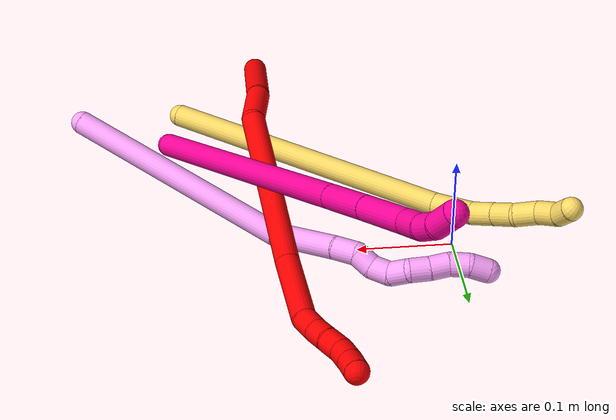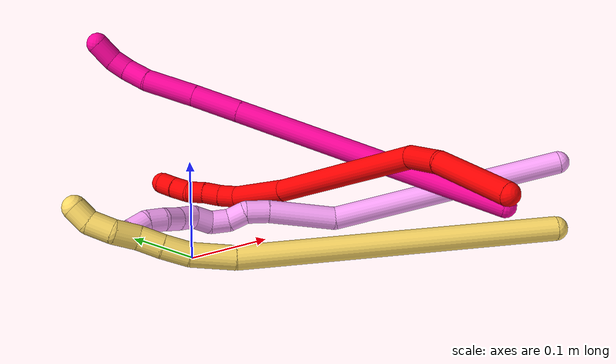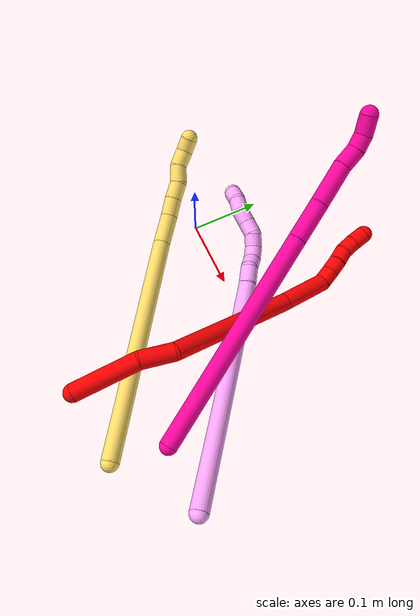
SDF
<sdf version="1.7">
 <world name="default">
  <model name="2">
   <static>0</static>
   <link name="2">
    <collision name="collision-cylinder-e_1_1_4">
     <pose>-0.004747 0.020313 -0.040989 -2.6815 -0.103409 0.434957</pose>
     <geometry><cylinder><radius>0.0125</radius><length>0.091983</length></cylinder></geometry>
     <surface>
      <friction><ode><mu>1.16</mu><mu2>1.16</mu2><slip1>0</slip1><slip2>0</slip2></ode></friction>
      <contact><ode><kp>1e+06</kp><kd>1</kd><max_vel>0</max_vel><min_depth>0.001</min_depth></ode></contact>
     </surface>
    </collision>
    <visual name="visual-cylinder-e_1_1_4">
     <pose>-0.004747 0.020313 -0.040989 -2.6815 -0.103409 0.434957</pose>
     <geometry><cylinder><radius>0.0125</radius><length>0.091983</length></cylinder></geometry>
     <material><ambient>1 0 0 1</ambient></material>
    </visual>
    <collision name="collision-cylinder-e_2_4_5">
     <pose>-0.007983 0.045869 -0.104535 -2.9132 0.065198 -0.554019</pose>
     <geometry><cylinder><radius>0.0125</radius><length>0.046417</length></cylinder></geometry>
     <surface>
      <friction><ode><mu>1.16</mu><mu2>1.16</mu2><slip1>0</slip1><slip2>0</slip2></ode></friction>
      <contact><ode><kp>1e+06</kp><kd>1</kd><max_vel>0</max_vel><min_depth>0.001</min_depth></ode></contact>
     </surface>
    </collision>
    <visual name="visual-cylinder-e_2_4_5">
     <pose>-0.007983 0.045869 -0.104535 -2.9132 0.065198 -0.554019</pose>
     <geometry><cylinder><radius>0.0125</radius><length>0.046417</length></cylinder></geometry>
     <material><ambient>1 0 0 1</ambient></material>
    </visual>
    <collision name="collision-cylinder-e_3_5_6">
     <pose>-0.024752 0.043484 -0.21868 3.0585 -0.196348 -2.34277</pose>
     <geometry><cylinder><radius>0.0125</radius><length>0.18741</length></cylinder></geometry>
     <surface>
      <friction><ode><mu>1.16</mu><mu2>1.16</mu2><slip1>0</slip1><slip2>0</slip2></ode></friction>
      <contact><ode><kp>1e+06</kp><kd>1</kd><max_vel>0</max_vel><min_depth>0.001</min_depth></ode></contact>
     </surface>
    </collision>
    <visual name="visual-cylinder-e_3_5_6">
     <pose>-0.024752 0.043484 -0.21868 3.0585 -0.196348 -2.34277</pose>
     <geometry><cylinder><radius>0.0125</radius><length>0.18741</length></cylinder></geometry>
     <material><ambient>1 0 0 1</ambient></material>
    </visual>
    <collision name="collision-cylinder-e_4_6_7">
     <pose>-0.051325 0.035927 -0.345409 -3.13957 -0.231741 3.12424</pose>
     <geometry><cylinder><radius>0.0125</radius><length>0.072213</length></cylinder></geometry>
     <surface>
      <friction><ode><mu>1.16</mu><mu2>1.16</mu2><slip1>0</slip1><slip2>0</slip2></ode></friction>
      <contact><ode><kp>1e+06</kp><kd>1</kd><max_vel>0</max_vel><min_depth>0.001</min_depth></ode></contact>
     </surface>
    </collision>
    <visual name="visual-cylinder-e_4_6_7">
     <pose>-0.051325 0.035927 -0.345409 -3.13957 -0.231741 3.12424</pose>
     <geometry><cylinder><radius>0.0125</radius><length>0.072213</length></cylinder></geometry>
     <material><ambient>1 0 0 1</ambient></material>
    </visual>
    <collision name="collision-cylinder-e_5_7_8">
     <pose>-0.065531 0.037891 -0.389327 -2.9292 -0.582414 2.45819</pose>
     <geometry><cylinder><radius>0.0125</radius><length>0.021502</length></cylinder></geometry>
     <surface>
      <friction><ode><mu>1.16</mu><mu2>1.16</mu2><slip1>0</slip1><slip2>0</slip2></ode></friction>
      <contact><ode><kp>1e+06</kp><kd>1</kd><max_vel>0</max_vel><min_depth>0.001</min_depth></ode></contact>
     </surface>
    </collision>
    <visual name="visual-cylinder-e_5_7_8">
     <pose>-0.065531 0.037891 -0.389327 -2.9292 -0.582414 2.45819</pose>
     <geometry><cylinder><radius>0.0125</radius><length>0.021502</length></cylinder></geometry>
     <material><ambient>1 0 0 1</ambient></material>
    </visual>
    <collision name="collision-cylinder-e_6_8_9">
     <pose>-0.077221 0.042709 -0.405873 -2.78141 -0.607935 2.08984</pose>
     <geometry><cylinder><radius>0.0125</radius><length>0.020226</length></cylinder></geometry>
     <surface>
      <friction><ode><mu>1.16</mu><mu2>1.16</mu2><slip1>0</slip1><slip2>0</slip2></ode></friction>
      <contact><ode><kp>1e+06</kp><kd>1</kd><max_vel>0</max_vel><min_depth>0.001</min_depth></ode></contact>
     </surface>
    </collision>
    <visual name="visual-cylinder-e_6_8_9">
     <pose>-0.077221 0.042709 -0.405873 -2.78141 -0.607935 2.08984</pose>
     <geometry><cylinder><radius>0.0125</radius><length>0.020226</length></cylinder></geometry>
     <material><ambient>1 0 0 1</ambient></material>
    </visual>
    <collision name="collision-cylinder-e_7_9_10">
     <pose>-0.089433 0.047287 -0.421233 -2.92724 -0.691819 2.56139</pose>
     <geometry><cylinder><radius>0.0125</radius><length>0.020178</length></cylinder></geometry>
     <surface>
      <friction><ode><mu>1.16</mu><mu2>1.16</mu2><slip1>0</slip1><slip2>0</slip2></ode></friction>
      <contact><ode><kp>1e+06</kp><kd>1</kd><max_vel>0</max_vel><min_depth>0.001</min_depth></ode></contact>
     </surface>
    </collision>
    <visual name="visual-cylinder-e_7_9_10">
     <pose>-0.089433 0.047287 -0.421233 -2.92724 -0.691819 2.56139</pose>
     <geometry><cylinder><radius>0.0125</radius><length>0.020178</length></cylinder></geometry>
     <material><ambient>1 0 0 1</ambient></material>
    </visual>
    <collision name="collision-cylinder-e_8_10_11">
     <pose>-0.09983 0.052538 -0.43728 -2.73927 -0.406908 1.58244</pose>
     <geometry><cylinder><radius>0.0125</radius><length>0.020014</length></cylinder></geometry>
     <surface>
      <friction><ode><mu>1.16</mu><mu2>1.16</mu2><slip1>0</slip1><slip2>0</slip2></ode></friction>
      <contact><ode><kp>1e+06</kp><kd>1</kd><max_vel>0</max_vel><min_depth>0.001</min_depth></ode></contact>
     </surface>
    </collision>
    <visual name="visual-cylinder-e_8_10_11">
     <pose>-0.09983 0.052538 -0.43728 -2.73927 -0.406908 1.58244</pose>
     <geometry><cylinder><radius>0.0125</radius><length>0.020014</length></cylinder></geometry>
     <material><ambient>1 0 0 1</ambient></material>
    </visual>
    <collision name="collision-cylinder-e_9_11_2">
     <pose>-0.106998 0.060011 -0.454412 -2.72162 -0.325531 1.31301</pose>
     <geometry><cylinder><radius>0.0125</radius><length>0.020057</length></cylinder></geometry>
     <surface>
      <friction><ode><mu>1.16</mu><mu2>1.16</mu2><slip1>0</slip1><slip2>0</slip2></ode></friction>
      <contact><ode><kp>1e+06</kp><kd>1</kd><max_vel>0</max_vel><min_depth>0.001</min_depth></ode></contact>
     </surface>
    </collision>
    <visual name="visual-cylinder-e_9_11_2">
     <pose>-0.106998 0.060011 -0.454412 -2.72162 -0.325531 1.31301</pose>
     <geometry><cylinder><radius>0.0125</radius><length>0.020057</length></cylinder></geometry>
     <material><ambient>1 0 0 1</ambient></material>
    </visual>
    <collision name="collision-sphere-2">
     <pose>-0.110205 0.063885 -0.463088 0 -0 0</pose>
     <geometry><sphere><radius>0.0125</radius></sphere></geometry>
     <surface>
      <friction><ode><mu>1.16</mu><mu2>1.16</mu2><slip1>0</slip1><slip2>0</slip2></ode></friction>
      <contact><ode><kp>1e+06</kp><kd>1</kd><max_vel>0</max_vel><min_depth>0.001</min_depth></ode></contact>
     </surface>
    </collision>
    <visual name="visual-sphere-2">
     <pose>-0.110205 0.063885 -0.463088 0 -0 0</pose>
     <geometry><sphere><radius>0.0125</radius></sphere></geometry>
     <material><ambient>1 0 0 1</ambient></material>
    </visual>
    <collision name="collision-sphere-11">
     <pose>-0.10379 0.056137 -0.445736 0 -0 0</pose>
     <geometry><sphere><radius>0.0125</radius></sphere></geometry>
     <surface>
      <friction><ode><mu>1.16</mu><mu2>1.16</mu2><slip1>0</slip1><slip2>0</slip2></ode></friction>
      <contact><ode><kp>1e+06</kp><kd>1</kd><max_vel>0</max_vel><min_depth>0.001</min_depth></ode></contact>
     </surface>
    </collision>
    <visual name="visual-sphere-11">
     <pose>-0.10379 0.056137 -0.445736 0 -0 0</pose>
     <geometry><sphere><radius>0.0125</radius></sphere></geometry>
     <material><ambient>1 0 0 1</ambient></material>
    </visual>
    <collision name="collision-sphere-10">
     <pose>-0.09587 0.04894 -0.428824 0 -0 0</pose>
     <geometry><sphere><radius>0.0125</radius></sphere></geometry>
     <surface>
      <friction><ode><mu>1.16</mu><mu2>1.16</mu2><slip1>0</slip1><slip2>0</slip2></ode></friction>
      <contact><ode><kp>1e+06</kp><kd>1</kd><max_vel>0</max_vel><min_depth>0.001</min_depth></ode></contact>
     </surface>
    </collision>
    <visual name="visual-sphere-10">
     <pose>-0.09587 0.04894 -0.428824 0 -0 0</pose>
     <geometry><sphere><radius>0.0125</radius></sphere></geometry>
     <material><ambient>1 0 0 1</ambient></material>
    </visual>
    <collision name="collision-sphere-9">
     <pose>-0.082997 0.045635 -0.413641 0 -0 0</pose>
     <geometry><sphere><radius>0.0125</radius></sphere></geometry>
     <surface>
      <friction><ode><mu>1.16</mu><mu2>1.16</mu2><slip1>0</slip1><slip2>0</slip2></ode></friction>
      <contact><ode><kp>1e+06</kp><kd>1</kd><max_vel>0</max_vel><min_depth>0.001</min_depth></ode></contact>
     </surface>
    </collision>
    <visual name="visual-sphere-9">
     <pose>-0.082997 0.045635 -0.413641 0 -0 0</pose>
     <geometry><sphere><radius>0.0125</radius></sphere></geometry>
     <material><ambient>1 0 0 1</ambient></material>
    </visual>
    <collision name="collision-sphere-4">
     <pose>-0.009495 0.040625 -0.081977 0 -0 0</pose>
     <geometry><sphere><radius>0.0125</radius></sphere></geometry>
     <surface>
      <friction><ode><mu>1.16</mu><mu2>1.16</mu2><slip1>0</slip1><slip2>0</slip2></ode></friction>
      <contact><ode><kp>1e+06</kp><kd>1</kd><max_vel>0</max_vel><min_depth>0.001</min_depth></ode></contact>
     </surface>
    </collision>
    <visual name="visual-sphere-4">
     <pose>-0.009495 0.040625 -0.081977 0 -0 0</pose>
     <geometry><sphere><radius>0.0125</radius></sphere></geometry>
     <material><ambient>1 0 0 1</ambient></material>
    </visual>
    <collision name="collision-sphere-1">
     <geometry><sphere><radius>0.0125</radius></sphere></geometry>
     <surface>
      <friction><ode><mu>1.16</mu><mu2>1.16</mu2><slip1>0</slip1><slip2>0</slip2></ode></friction>
      <contact><ode><kp>1e+06</kp><kd>1</kd><max_vel>0</max_vel><min_depth>0.001</min_depth></ode></contact>
     </surface>
    </collision>
    <visual name="visual-sphere-1">
     <geometry><sphere><radius>0.0125</radius></sphere></geometry>
     <material><ambient>1 0 0 1</ambient></material>
    </visual>
    <collision name="collision-sphere-8">
     <pose>-0.071445 0.039783 -0.398104 0 -0 0</pose>
     <geometry><sphere><radius>0.0125</radius></sphere></geometry>
     <surface>
      <friction><ode><mu>1.16</mu><mu2>1.16</mu2><slip1>0</slip1><slip2>0</slip2></ode></friction>
      <contact><ode><kp>1e+06</kp><kd>1</kd><max_vel>0</max_vel><min_depth>0.001</min_depth></ode></contact>
     </surface>
    </collision>
    <visual name="visual-sphere-8">
     <pose>-0.071445 0.039783 -0.398104 0 -0 0</pose>
     <geometry><sphere><radius>0.0125</radius></sphere></geometry>
     <material><ambient>1 0 0 1</ambient></material>
    </visual>
    <collision name="collision-sphere-5">
     <pose>-0.006471 0.051112 -0.127093 0 -0 0</pose>
     <geometry><sphere><radius>0.0125</radius></sphere></geometry>
     <surface>
      <friction><ode><mu>1.16</mu><mu2>1.16</mu2><slip1>0</slip1><slip2>0</slip2></ode></friction>
      <contact><ode><kp>1e+06</kp><kd>1</kd><max_vel>0</max_vel><min_depth>0.001</min_depth></ode></contact>
     </surface>
    </collision>
    <visual name="visual-sphere-5">
     <pose>-0.006471 0.051112 -0.127093 0 -0 0</pose>
     <geometry><sphere><radius>0.0125</radius></sphere></geometry>
     <material><ambient>1 0 0 1</ambient></material>
    </visual>
    <collision name="collision-sphere-6">
     <pose>-0.043032 0.035856 -0.310268 0 -0 0</pose>
     <geometry><sphere><radius>0.0125</radius></sphere></geometry>
     <surface>
      <friction><ode><mu>1.16</mu><mu2>1.16</mu2><slip1>0</slip1><slip2>0</slip2></ode></friction>
      <contact><ode><kp>1e+06</kp><kd>1</kd><max_vel>0</max_vel><min_depth>0.001</min_depth></ode></contact>
     </surface>
    </collision>
    <visual name="visual-sphere-6">
     <pose>-0.043032 0.035856 -0.310268 0 -0 0</pose>
     <geometry><sphere><radius>0.0125</radius></sphere></geometry>
     <material><ambient>1 0 0 1</ambient></material>
    </visual>
    <collision name="collision-sphere-7">
     <pose>-0.059618 0.035998 -0.380551 0 -0 0</pose>
     <geometry><sphere><radius>0.0125</radius></sphere></geometry>
     <surface>
      <friction><ode><mu>1.16</mu><mu2>1.16</mu2><slip1>0</slip1><slip2>0</slip2></ode></friction>
      <contact><ode><kp>1e+06</kp><kd>1</kd><max_vel>0</max_vel><min_depth>0.001</min_depth></ode></contact>
     </surface>
    </collision>
    <visual name="visual-sphere-7">
     <pose>-0.059618 0.035998 -0.380551 0 -0 0</pose>
     <geometry><sphere><radius>0.0125</radius></sphere></geometry>
     <material><ambient>1 0 0 1</ambient></material>
    </visual>
    <inertial>
     <pose>-0.036144 0.039258 -0.234989 0 -0 0</pose>
     <mass>0.5</mass>
     <inertia>
      <ixx>-0.000716</ixx>
      <ixy>0</ixy>
      <ixz>0</ixz>
      <iyy>1.2e-05</iyy>
      <iyz>0</iyz>
      <izz>0.000101</izz>
     </inertia>
    </inertial>
   </link>
   <pose>0.188685 -0.25553 0.080002 1.28761 0.074553 -0.11422</pose>
  </model>
  <model name="4">
   <static>0</static>
   <link name="4">
    <collision name="collision-cylinder-e_1_1_4">
     <pose>-0.018843 0.056694 -0.114546 -2.682 -0.146378 0.607461</pose>
     <geometry><cylinder><radius>0.0125</radius><length>0.258381</length></cylinder></geometry>
     <surface>
      <friction><ode><mu>1.16</mu><mu2>1.16</mu2><slip1>0</slip1><slip2>0</slip2></ode></friction>
      <contact><ode><kp>1e+06</kp><kd>1</kd><max_vel>0</max_vel><min_depth>0.001</min_depth></ode></contact>
     </surface>
    </collision>
    <visual name="visual-cylinder-e_1_1_4">
     <pose>-0.018843 0.056694 -0.114546 -2.682 -0.146378 0.607461</pose>
     <geometry><cylinder><radius>0.0125</radius><length>0.258381</length></cylinder></geometry>
     <material><ambient>1 0.65098 0.996078 1</ambient></material>
    </visual>
    <collision name="collision-cylinder-e_2_4_5">
     <pose>-0.045429 0.139816 -0.25375 -2.32154 -0.211033 0.478006</pose>
     <geometry><cylinder><radius>0.0125</radius><length>0.073928</length></cylinder></geometry>
     <surface>
      <friction><ode><mu>1.16</mu><mu2>1.16</mu2><slip1>0</slip1><slip2>0</slip2></ode></friction>
      <contact><ode><kp>1e+06</kp><kd>1</kd><max_vel>0</max_vel><min_depth>0.001</min_depth></ode></contact>
     </surface>
    </collision>
    <visual name="visual-cylinder-e_2_4_5">
     <pose>-0.045429 0.139816 -0.25375 -2.32154 -0.211033 0.478006</pose>
     <geometry><cylinder><radius>0.0125</radius><length>0.073928</length></cylinder></geometry>
     <material><ambient>1 0.65098 0.996078 1</ambient></material>
    </visual>
    <collision name="collision-cylinder-e_3_5_6">
     <pose>-0.056539 0.173895 -0.2878 -2.458 -0.271092 0.732153</pose>
     <geometry><cylinder><radius>0.0125</radius><length>0.02515</length></cylinder></geometry>
     <surface>
      <friction><ode><mu>1.16</mu><mu2>1.16</mu2><slip1>0</slip1><slip2>0</slip2></ode></friction>
      <contact><ode><kp>1e+06</kp><kd>1</kd><max_vel>0</max_vel><min_depth>0.001</min_depth></ode></contact>
     </surface>
    </collision>
    <visual name="visual-cylinder-e_3_5_6">
     <pose>-0.056539 0.173895 -0.2878 -2.458 -0.271092 0.732153</pose>
     <geometry><cylinder><radius>0.0125</radius><length>0.02515</length></cylinder></geometry>
     <material><ambient>1 0.65098 0.996078 1</ambient></material>
    </visual>
    <collision name="collision-cylinder-e_4_6_7">
     <pose>-0.060348 0.184009 -0.307002 -2.89575 -0.043636 0.349661</pose>
     <geometry><cylinder><radius>0.0125</radius><length>0.020245</length></cylinder></geometry>
     <surface>
      <friction><ode><mu>1.16</mu><mu2>1.16</mu2><slip1>0</slip1><slip2>0</slip2></ode></friction>
      <contact><ode><kp>1e+06</kp><kd>1</kd><max_vel>0</max_vel><min_depth>0.001</min_depth></ode></contact>
     </surface>
    </collision>
    <visual name="visual-cylinder-e_4_6_7">
     <pose>-0.060348 0.184009 -0.307002 -2.89575 -0.043636 0.349661</pose>
     <geometry><cylinder><radius>0.0125</radius><length>0.020245</length></cylinder></geometry>
     <material><ambient>1 0.65098 0.996078 1</ambient></material>
    </visual>
    <collision name="collision-cylinder-e_5_7_8">
     <pose>-0.063219 0.192045 -0.325095 -2.54926 -0.238592 0.748608</pose>
     <geometry><cylinder><radius>0.0125</radius><length>0.020553</length></cylinder></geometry>
     <surface>
      <friction><ode><mu>1.16</mu><mu2>1.16</mu2><slip1>0</slip1><slip2>0</slip2></ode></friction>
      <contact><ode><kp>1e+06</kp><kd>1</kd><max_vel>0</max_vel><min_depth>0.001</min_depth></ode></contact>
     </surface>
    </collision>
    <visual name="visual-cylinder-e_5_7_8">
     <pose>-0.063219 0.192045 -0.325095 -2.54926 -0.238592 0.748608</pose>
     <geometry><cylinder><radius>0.0125</radius><length>0.020553</length></cylinder></geometry>
     <material><ambient>1 0.65098 0.996078 1</ambient></material>
    </visual>
    <collision name="collision-cylinder-e_6_8_9">
     <pose>-0.070392 0.205805 -0.337644 -2.05101 -0.474854 0.759116</pose>
     <geometry><cylinder><radius>0.0125</radius><length>0.020756</length></cylinder></geometry>
     <surface>
      <friction><ode><mu>1.16</mu><mu2>1.16</mu2><slip1>0</slip1><slip2>0</slip2></ode></friction>
      <contact><ode><kp>1e+06</kp><kd>1</kd><max_vel>0</max_vel><min_depth>0.001</min_depth></ode></contact>
     </surface>
    </collision>
    <visual name="visual-cylinder-e_6_8_9">
     <pose>-0.070392 0.205805 -0.337644 -2.05101 -0.474854 0.759116</pose>
     <geometry><cylinder><radius>0.0125</radius><length>0.020756</length></cylinder></geometry>
     <material><ambient>1 0.65098 0.996078 1</ambient></material>
    </visual>
    <collision name="collision-cylinder-e_7_9_10">
     <pose>-0.082787 0.218107 -0.347579 -2.51381 -0.829243 1.87062</pose>
     <geometry><cylinder><radius>0.0125</radius><length>0.020748</length></cylinder></geometry>
     <surface>
      <friction><ode><mu>1.16</mu><mu2>1.16</mu2><slip1>0</slip1><slip2>0</slip2></ode></friction>
      <contact><ode><kp>1e+06</kp><kd>1</kd><max_vel>0</max_vel><min_depth>0.001</min_depth></ode></contact>
     </surface>
    </collision>
    <visual name="visual-cylinder-e_7_9_10">
     <pose>-0.082787 0.218107 -0.347579 -2.51381 -0.829243 1.87062</pose>
     <geometry><cylinder><radius>0.0125</radius><length>0.020748</length></cylinder></geometry>
     <material><ambient>1 0.65098 0.996078 1</ambient></material>
    </visual>
    <collision name="collision-cylinder-e_8_10_11">
     <pose>-0.098325 0.226588 -0.357781 -2.37479 -0.897417 1.74687</pose>
     <geometry><cylinder><radius>0.0125</radius><length>0.02018</length></cylinder></geometry>
     <surface>
      <friction><ode><mu>1.16</mu><mu2>1.16</mu2><slip1>0</slip1><slip2>0</slip2></ode></friction>
      <contact><ode><kp>1e+06</kp><kd>1</kd><max_vel>0</max_vel><min_depth>0.001</min_depth></ode></contact>
     </surface>
    </collision>
    <visual name="visual-cylinder-e_8_10_11">
     <pose>-0.098325 0.226588 -0.357781 -2.37479 -0.897417 1.74687</pose>
     <geometry><cylinder><radius>0.0125</radius><length>0.02018</length></cylinder></geometry>
     <material><ambient>1 0.65098 0.996078 1</ambient></material>
    </visual>
    <collision name="collision-cylinder-e_9_11_12">
     <pose>-0.112041 0.235652 -0.368964 -2.52674 -0.621204 1.58176</pose>
     <geometry><cylinder><radius>0.0125</radius><length>0.020028</length></cylinder></geometry>
     <surface>
      <friction><ode><mu>1.16</mu><mu2>1.16</mu2><slip1>0</slip1><slip2>0</slip2></ode></friction>
      <contact><ode><kp>1e+06</kp><kd>1</kd><max_vel>0</max_vel><min_depth>0.001</min_depth></ode></contact>
     </surface>
    </collision>
    <visual name="visual-cylinder-e_9_11_12">
     <pose>-0.112041 0.235652 -0.368964 -2.52674 -0.621204 1.58176</pose>
     <geometry><cylinder><radius>0.0125</radius><length>0.020028</length></cylinder></geometry>
     <material><ambient>1 0.65098 0.996078 1</ambient></material>
    </visual>
    <collision name="collision-cylinder-e_10_12_2">
     <pose>-0.123561 0.241613 -0.383759 -2.98758 -0.604444 2.65638</pose>
     <geometry><cylinder><radius>0.0125</radius><length>0.020031</length></cylinder></geometry>
     <surface>
      <friction><ode><mu>1.16</mu><mu2>1.16</mu2><slip1>0</slip1><slip2>0</slip2></ode></friction>
      <contact><ode><kp>1e+06</kp><kd>1</kd><max_vel>0</max_vel><min_depth>0.001</min_depth></ode></contact>
     </surface>
    </collision>
    <visual name="visual-cylinder-e_10_12_2">
     <pose>-0.123561 0.241613 -0.383759 -2.98758 -0.604444 2.65638</pose>
     <geometry><cylinder><radius>0.0125</radius><length>0.020031</length></cylinder></geometry>
     <material><ambient>1 0.65098 0.996078 1</ambient></material>
    </visual>
    <collision name="collision-sphere-2">
     <pose>-0.129253 0.242877 -0.391902 0 -0 0</pose>
     <geometry><sphere><radius>0.0125</radius></sphere></geometry>
     <surface>
      <friction><ode><mu>1.16</mu><mu2>1.16</mu2><slip1>0</slip1><slip2>0</slip2></ode></friction>
      <contact><ode><kp>1e+06</kp><kd>1</kd><max_vel>0</max_vel><min_depth>0.001</min_depth></ode></contact>
     </surface>
    </collision>
    <visual name="visual-sphere-2">
     <pose>-0.129253 0.242877 -0.391902 0 -0 0</pose>
     <geometry><sphere><radius>0.0125</radius></sphere></geometry>
     <material><ambient>1 0.65098 0.996078 1</ambient></material>
    </visual>
    <collision name="collision-sphere-12">
     <pose>-0.117869 0.240349 -0.375616 0 -0 0</pose>
     <geometry><sphere><radius>0.0125</radius></sphere></geometry>
     <surface>
      <friction><ode><mu>1.16</mu><mu2>1.16</mu2><slip1>0</slip1><slip2>0</slip2></ode></friction>
      <contact><ode><kp>1e+06</kp><kd>1</kd><max_vel>0</max_vel><min_depth>0.001</min_depth></ode></contact>
     </surface>
    </collision>
    <visual name="visual-sphere-12">
     <pose>-0.117869 0.240349 -0.375616 0 -0 0</pose>
     <geometry><sphere><radius>0.0125</radius></sphere></geometry>
     <material><ambient>1 0.65098 0.996078 1</ambient></material>
    </visual>
    <collision name="collision-sphere-11">
     <pose>-0.106213 0.230954 -0.362312 0 -0 0</pose>
     <geometry><sphere><radius>0.0125</radius></sphere></geometry>
     <surface>
      <friction><ode><mu>1.16</mu><mu2>1.16</mu2><slip1>0</slip1><slip2>0</slip2></ode></friction>
      <contact><ode><kp>1e+06</kp><kd>1</kd><max_vel>0</max_vel><min_depth>0.001</min_depth></ode></contact>
     </surface>
    </collision>
    <visual name="visual-sphere-11">
     <pose>-0.106213 0.230954 -0.362312 0 -0 0</pose>
     <geometry><sphere><radius>0.0125</radius></sphere></geometry>
     <material><ambient>1 0.65098 0.996078 1</ambient></material>
    </visual>
    <collision name="collision-sphere-10">
     <pose>-0.090437 0.222222 -0.35325 0 -0 0</pose>
     <geometry><sphere><radius>0.0125</radius></sphere></geometry>
     <surface>
      <friction><ode><mu>1.16</mu><mu2>1.16</mu2><slip1>0</slip1><slip2>0</slip2></ode></friction>
      <contact><ode><kp>1e+06</kp><kd>1</kd><max_vel>0</max_vel><min_depth>0.001</min_depth></ode></contact>
     </surface>
    </collision>
    <visual name="visual-sphere-10">
     <pose>-0.090437 0.222222 -0.35325 0 -0 0</pose>
     <geometry><sphere><radius>0.0125</radius></sphere></geometry>
     <material><ambient>1 0.65098 0.996078 1</ambient></material>
    </visual>
    <collision name="collision-sphere-9">
     <pose>-0.075137 0.213991 -0.341908 0 -0 0</pose>
     <geometry><sphere><radius>0.0125</radius></sphere></geometry>
     <surface>
      <friction><ode><mu>1.16</mu><mu2>1.16</mu2><slip1>0</slip1><slip2>0</slip2></ode></friction>
      <contact><ode><kp>1e+06</kp><kd>1</kd><max_vel>0</max_vel><min_depth>0.001</min_depth></ode></contact>
     </surface>
    </collision>
    <visual name="visual-sphere-9">
     <pose>-0.075137 0.213991 -0.341908 0 -0 0</pose>
     <geometry><sphere><radius>0.0125</radius></sphere></geometry>
     <material><ambient>1 0.65098 0.996078 1</ambient></material>
    </visual>
    <collision name="collision-sphere-4">
     <pose>-0.037686 0.113388 -0.229093 0 -0 0</pose>
     <geometry><sphere><radius>0.0125</radius></sphere></geometry>
     <surface>
      <friction><ode><mu>1.16</mu><mu2>1.16</mu2><slip1>0</slip1><slip2>0</slip2></ode></friction>
      <contact><ode><kp>1e+06</kp><kd>1</kd><max_vel>0</max_vel><min_depth>0.001</min_depth></ode></contact>
     </surface>
    </collision>
    <visual name="visual-sphere-4">
     <pose>-0.037686 0.113388 -0.229093 0 -0 0</pose>
     <geometry><sphere><radius>0.0125</radius></sphere></geometry>
     <material><ambient>1 0.65098 0.996078 1</ambient></material>
    </visual>
    <collision name="collision-sphere-1">
     <geometry><sphere><radius>0.0125</radius></sphere></geometry>
     <surface>
      <friction><ode><mu>1.16</mu><mu2>1.16</mu2><slip1>0</slip1><slip2>0</slip2></ode></friction>
      <contact><ode><kp>1e+06</kp><kd>1</kd><max_vel>0</max_vel><min_depth>0.001</min_depth></ode></contact>
     </surface>
    </collision>
    <visual name="visual-sphere-1">
     <geometry><sphere><radius>0.0125</radius></sphere></geometry>
     <material><ambient>1 0.65098 0.996078 1</ambient></material>
    </visual>
    <collision name="collision-sphere-8">
     <pose>-0.065647 0.197619 -0.33338 0 -0 0</pose>
     <geometry><sphere><radius>0.0125</radius></sphere></geometry>
     <surface>
      <friction><ode><mu>1.16</mu><mu2>1.16</mu2><slip1>0</slip1><slip2>0</slip2></ode></friction>
      <contact><ode><kp>1e+06</kp><kd>1</kd><max_vel>0</max_vel><min_depth>0.001</min_depth></ode></contact>
     </surface>
    </collision>
    <visual name="visual-sphere-8">
     <pose>-0.065647 0.197619 -0.33338 0 -0 0</pose>
     <geometry><sphere><radius>0.0125</radius></sphere></geometry>
     <material><ambient>1 0.65098 0.996078 1</ambient></material>
    </visual>
    <collision name="collision-sphere-5">
     <pose>-0.053172 0.166243 -0.278407 0 -0 0</pose>
     <geometry><sphere><radius>0.0125</radius></sphere></geometry>
     <surface>
      <friction><ode><mu>1.16</mu><mu2>1.16</mu2><slip1>0</slip1><slip2>0</slip2></ode></friction>
      <contact><ode><kp>1e+06</kp><kd>1</kd><max_vel>0</max_vel><min_depth>0.001</min_depth></ode></contact>
     </surface>
    </collision>
    <visual name="visual-sphere-5">
     <pose>-0.053172 0.166243 -0.278407 0 -0 0</pose>
     <geometry><sphere><radius>0.0125</radius></sphere></geometry>
     <material><ambient>1 0.65098 0.996078 1</ambient></material>
    </visual>
    <collision name="collision-sphere-6">
     <pose>-0.059907 0.181547 -0.297193 0 -0 0</pose>
     <geometry><sphere><radius>0.0125</radius></sphere></geometry>
     <surface>
      <friction><ode><mu>1.16</mu><mu2>1.16</mu2><slip1>0</slip1><slip2>0</slip2></ode></friction>
      <contact><ode><kp>1e+06</kp><kd>1</kd><max_vel>0</max_vel><min_depth>0.001</min_depth></ode></contact>
     </surface>
    </collision>
    <visual name="visual-sphere-6">
     <pose>-0.059907 0.181547 -0.297193 0 -0 0</pose>
     <geometry><sphere><radius>0.0125</radius></sphere></geometry>
     <material><ambient>1 0.65098 0.996078 1</ambient></material>
    </visual>
    <collision name="collision-sphere-7">
     <pose>-0.06079 0.18647 -0.316811 0 -0 0</pose>
     <geometry><sphere><radius>0.0125</radius></sphere></geometry>
     <surface>
      <friction><ode><mu>1.16</mu><mu2>1.16</mu2><slip1>0</slip1><slip2>0</slip2></ode></friction>
      <contact><ode><kp>1e+06</kp><kd>1</kd><max_vel>0</max_vel><min_depth>0.001</min_depth></ode></contact>
     </surface>
    </collision>
    <visual name="visual-sphere-7">
     <pose>-0.06079 0.18647 -0.316811 0 -0 0</pose>
     <geometry><sphere><radius>0.0125</radius></sphere></geometry>
     <material><ambient>1 0.65098 0.996078 1</ambient></material>
    </visual>
    <inertial>
     <pose>-0.044104 0.119919 -0.210015 0 -0 0</pose>
     <mass>0.5</mass>
     <inertia>
      <ixx>0.002043</ixx>
      <ixy>0</ixy>
      <ixz>0</ixz>
      <iyy>-0.00017</iyy>
      <iyz>0</iyz>
      <izz>-0.000473</izz>
     </inertia>
    </inertial>
   </link>
   <pose>0.384185 -0.173613 0.068315 0.85802 0.167975 0.726932</pose>
  </model>
  <model name="5">
   <static>0</static>
   <link name="5">
    <collision name="collision-cylinder-e_1_1_4">
     <pose>-0.144663 0.011111 0.0779 -0.141678 -1.07262 0.084308</pose>
     <geometry><cylinder><radius>0.0125</radius><length>0.329358</length></cylinder></geometry>
     <surface>
      <friction><ode><mu>1.16</mu><mu2>1.16</mu2><slip1>0</slip1><slip2>0</slip2></ode></friction>
      <contact><ode><kp>1e+06</kp><kd>1</kd><max_vel>0</max_vel><min_depth>0.001</min_depth></ode></contact>
     </surface>
    </collision>
    <visual name="visual-cylinder-e_1_1_4">
     <pose>-0.144663 0.011111 0.0779 -0.141678 -1.07262 0.084308</pose>
     <geometry><cylinder><radius>0.0125</radius><length>0.329358</length></cylinder></geometry>
     <material><ambient>1 0.858824 0.4 1</ambient></material>
    </visual>
    <collision name="collision-cylinder-e_2_4_5">
     <pose>-0.307594 0.025932 0.168956 -0.274833 -0.92844 0.138265</pose>
     <geometry><cylinder><radius>0.0125</radius><length>0.045633</length></cylinder></geometry>
     <surface>
      <friction><ode><mu>1.16</mu><mu2>1.16</mu2><slip1>0</slip1><slip2>0</slip2></ode></friction>
      <contact><ode><kp>1e+06</kp><kd>1</kd><max_vel>0</max_vel><min_depth>0.001</min_depth></ode></contact>
     </surface>
    </collision>
    <visual name="visual-cylinder-e_2_4_5">
     <pose>-0.307594 0.025932 0.168956 -0.274833 -0.92844 0.138265</pose>
     <geometry><cylinder><radius>0.0125</radius><length>0.045633</length></cylinder></geometry>
     <material><ambient>1 0.858824 0.4 1</ambient></material>
    </visual>
    <collision name="collision-cylinder-e_3_5_6">
     <pose>-0.335027 0.032763 0.19234 -0.296174 -0.708485 0.110234</pose>
     <geometry><cylinder><radius>0.0125</radius><length>0.028166</length></cylinder></geometry>
     <surface>
      <friction><ode><mu>1.16</mu><mu2>1.16</mu2><slip1>0</slip1><slip2>0</slip2></ode></friction>
      <contact><ode><kp>1e+06</kp><kd>1</kd><max_vel>0</max_vel><min_depth>0.001</min_depth></ode></contact>
     </surface>
    </collision>
    <visual name="visual-cylinder-e_3_5_6">
     <pose>-0.335027 0.032763 0.19234 -0.296174 -0.708485 0.110234</pose>
     <geometry><cylinder><radius>0.0125</radius><length>0.028166</length></cylinder></geometry>
     <material><ambient>1 0.858824 0.4 1</ambient></material>
    </visual>
    <collision name="collision-cylinder-e_4_6_7">
     <pose>-0.352014 0.03984 0.211826 -0.40383 -0.660682 0.140159</pose>
     <geometry><cylinder><radius>0.0125</radius><length>0.025501</length></cylinder></geometry>
     <surface>
      <friction><ode><mu>1.16</mu><mu2>1.16</mu2><slip1>0</slip1><slip2>0</slip2></ode></friction>
      <contact><ode><kp>1e+06</kp><kd>1</kd><max_vel>0</max_vel><min_depth>0.001</min_depth></ode></contact>
     </surface>
    </collision>
    <visual name="visual-cylinder-e_4_6_7">
     <pose>-0.352014 0.03984 0.211826 -0.40383 -0.660682 0.140159</pose>
     <geometry><cylinder><radius>0.0125</radius><length>0.025501</length></cylinder></geometry>
     <material><ambient>1 0.858824 0.4 1</ambient></material>
    </visual>
    <collision name="collision-cylinder-e_5_7_8">
     <pose>-0.367842 0.043733 0.231252 0.006109 -0.666796 -0.002116</pose>
     <geometry><cylinder><radius>0.0125</radius><length>0.025882</length></cylinder></geometry>
     <surface>
      <friction><ode><mu>1.16</mu><mu2>1.16</mu2><slip1>0</slip1><slip2>0</slip2></ode></friction>
      <contact><ode><kp>1e+06</kp><kd>1</kd><max_vel>0</max_vel><min_depth>0.001</min_depth></ode></contact>
     </surface>
    </collision>
    <visual name="visual-cylinder-e_5_7_8">
     <pose>-0.367842 0.043733 0.231252 0.006109 -0.666796 -0.002116</pose>
     <geometry><cylinder><radius>0.0125</radius><length>0.025882</length></cylinder></geometry>
     <material><ambient>1 0.858824 0.4 1</ambient></material>
    </visual>
    <collision name="collision-cylinder-e_6_8_9">
     <pose>-0.383537 0.048568 0.250119 -0.512792 -0.656504 0.178101</pose>
     <geometry><cylinder><radius>0.0125</radius><length>0.0252</length></cylinder></geometry>
     <surface>
      <friction><ode><mu>1.16</mu><mu2>1.16</mu2><slip1>0</slip1><slip2>0</slip2></ode></friction>
      <contact><ode><kp>1e+06</kp><kd>1</kd><max_vel>0</max_vel><min_depth>0.001</min_depth></ode></contact>
     </surface>
    </collision>
    <visual name="visual-cylinder-e_6_8_9">
     <pose>-0.383537 0.048568 0.250119 -0.512792 -0.656504 0.178101</pose>
     <geometry><cylinder><radius>0.0125</radius><length>0.0252</length></cylinder></geometry>
     <material><ambient>1 0.858824 0.4 1</ambient></material>
    </visual>
    <collision name="collision-cylinder-e_7_9_2">
     <pose>-0.393597 0.05832 0.267385 -0.515524 -0.236158 0.062528</pose>
     <geometry><cylinder><radius>0.0125</radius><length>0.02026</length></cylinder></geometry>
     <surface>
      <friction><ode><mu>1.16</mu><mu2>1.16</mu2><slip1>0</slip1><slip2>0</slip2></ode></friction>
      <contact><ode><kp>1e+06</kp><kd>1</kd><max_vel>0</max_vel><min_depth>0.001</min_depth></ode></contact>
     </surface>
    </collision>
    <visual name="visual-cylinder-e_7_9_2">
     <pose>-0.393597 0.05832 0.267385 -0.515524 -0.236158 0.062528</pose>
     <geometry><cylinder><radius>0.0125</radius><length>0.02026</length></cylinder></geometry>
     <material><ambient>1 0.858824 0.4 1</ambient></material>
    </visual>
    <collision name="collision-sphere-2">
     <pose>-0.395967 0.063176 0.275954 0 -0 0</pose>
     <geometry><sphere><radius>0.0125</radius></sphere></geometry>
     <surface>
      <friction><ode><mu>1.16</mu><mu2>1.16</mu2><slip1>0</slip1><slip2>0</slip2></ode></friction>
      <contact><ode><kp>1e+06</kp><kd>1</kd><max_vel>0</max_vel><min_depth>0.001</min_depth></ode></contact>
     </surface>
    </collision>
    <visual name="visual-sphere-2">
     <pose>-0.395967 0.063176 0.275954 0 -0 0</pose>
     <geometry><sphere><radius>0.0125</radius></sphere></geometry>
     <material><ambient>1 0.858824 0.4 1</ambient></material>
    </visual>
    <collision name="collision-sphere-9">
     <pose>-0.391227 0.053465 0.258816 0 -0 0</pose>
     <geometry><sphere><radius>0.0125</radius></sphere></geometry>
     <surface>
      <friction><ode><mu>1.16</mu><mu2>1.16</mu2><slip1>0</slip1><slip2>0</slip2></ode></friction>
      <contact><ode><kp>1e+06</kp><kd>1</kd><max_vel>0</max_vel><min_depth>0.001</min_depth></ode></contact>
     </surface>
    </collision>
    <visual name="visual-sphere-9">
     <pose>-0.391227 0.053465 0.258816 0 -0 0</pose>
     <geometry><sphere><radius>0.0125</radius></sphere></geometry>
     <material><ambient>1 0.858824 0.4 1</ambient></material>
    </visual>
    <collision name="collision-sphere-4">
     <pose>-0.289325 0.022222 0.1558 0 -0 0</pose>
     <geometry><sphere><radius>0.0125</radius></sphere></geometry>
     <surface>
      <friction><ode><mu>1.16</mu><mu2>1.16</mu2><slip1>0</slip1><slip2>0</slip2></ode></friction>
      <contact><ode><kp>1e+06</kp><kd>1</kd><max_vel>0</max_vel><min_depth>0.001</min_depth></ode></contact>
     </surface>
    </collision>
    <visual name="visual-sphere-4">
     <pose>-0.289325 0.022222 0.1558 0 -0 0</pose>
     <geometry><sphere><radius>0.0125</radius></sphere></geometry>
     <material><ambient>1 0.858824 0.4 1</ambient></material>
    </visual>
    <collision name="collision-sphere-1">
     <geometry><sphere><radius>0.0125</radius></sphere></geometry>
     <surface>
      <friction><ode><mu>1.16</mu><mu2>1.16</mu2><slip1>0</slip1><slip2>0</slip2></ode></friction>
      <contact><ode><kp>1e+06</kp><kd>1</kd><max_vel>0</max_vel><min_depth>0.001</min_depth></ode></contact>
     </surface>
    </collision>
    <visual name="visual-sphere-1">
     <geometry><sphere><radius>0.0125</radius></sphere></geometry>
     <material><ambient>1 0.858824 0.4 1</ambient></material>
    </visual>
    <collision name="collision-sphere-8">
     <pose>-0.375846 0.043671 0.241421 0 -0 0</pose>
     <geometry><sphere><radius>0.0125</radius></sphere></geometry>
     <surface>
      <friction><ode><mu>1.16</mu><mu2>1.16</mu2><slip1>0</slip1><slip2>0</slip2></ode></friction>
      <contact><ode><kp>1e+06</kp><kd>1</kd><max_vel>0</max_vel><min_depth>0.001</min_depth></ode></contact>
     </surface>
    </collision>
    <visual name="visual-sphere-8">
     <pose>-0.375846 0.043671 0.241421 0 -0 0</pose>
     <geometry><sphere><radius>0.0125</radius></sphere></geometry>
     <material><ambient>1 0.858824 0.4 1</ambient></material>
    </visual>
    <collision name="collision-sphere-5">
     <pose>-0.325863 0.029642 0.182112 0 -0 0</pose>
     <geometry><sphere><radius>0.0125</radius></sphere></geometry>
     <surface>
      <friction><ode><mu>1.16</mu><mu2>1.16</mu2><slip1>0</slip1><slip2>0</slip2></ode></friction>
      <contact><ode><kp>1e+06</kp><kd>1</kd><max_vel>0</max_vel><min_depth>0.001</min_depth></ode></contact>
     </surface>
    </collision>
    <visual name="visual-sphere-5">
     <pose>-0.325863 0.029642 0.182112 0 -0 0</pose>
     <geometry><sphere><radius>0.0125</radius></sphere></geometry>
     <material><ambient>1 0.858824 0.4 1</ambient></material>
    </visual>
    <collision name="collision-sphere-6">
     <pose>-0.34419 0.035884 0.202568 0 -0 0</pose>
     <geometry><sphere><radius>0.0125</radius></sphere></geometry>
     <surface>
      <friction><ode><mu>1.16</mu><mu2>1.16</mu2><slip1>0</slip1><slip2>0</slip2></ode></friction>
      <contact><ode><kp>1e+06</kp><kd>1</kd><max_vel>0</max_vel><min_depth>0.001</min_depth></ode></contact>
     </surface>
    </collision>
    <visual name="visual-sphere-6">
     <pose>-0.34419 0.035884 0.202568 0 -0 0</pose>
     <geometry><sphere><radius>0.0125</radius></sphere></geometry>
     <material><ambient>1 0.858824 0.4 1</ambient></material>
    </visual>
    <collision name="collision-sphere-7">
     <pose>-0.359839 0.043796 0.221083 0 -0 0</pose>
     <geometry><sphere><radius>0.0125</radius></sphere></geometry>
     <surface>
      <friction><ode><mu>1.16</mu><mu2>1.16</mu2><slip1>0</slip1><slip2>0</slip2></ode></friction>
      <contact><ode><kp>1e+06</kp><kd>1</kd><max_vel>0</max_vel><min_depth>0.001</min_depth></ode></contact>
     </surface>
    </collision>
    <visual name="visual-sphere-7">
     <pose>-0.359839 0.043796 0.221083 0 -0 0</pose>
     <geometry><sphere><radius>0.0125</radius></sphere></geometry>
     <material><ambient>1 0.858824 0.4 1</ambient></material>
    </visual>
    <inertial>
     <pose>-0.214511 0.020638 0.123783 0 -0 0</pose>
     <mass>0.5</mass>
     <inertia>
      <ixx>0.00153</ixx>
      <ixy>0</ixy>
      <ixz>0</ixz>
      <iyy>0.003128</iyy>
      <iyz>0</iyz>
      <izz>0.002456</izz>
     </inertia>
    </inertial>
   </link>
   <pose>0.277305 -0.249482 0.027318 0.309058 -0.540553 -0.692488</pose>
  </model>
  <model name="18">
   <static>0</static>
   <link name="18">
    <collision name="collision-cylinder-e_1_1_4">
     <pose>-0.012388 0.154862 0.018864 -1.44958 -0.079238 0.070179</pose>
     <geometry><cylinder><radius>0.0125</radius><length>0.312996</length></cylinder></geometry>
     <surface>
      <friction><ode><mu>1.16</mu><mu2>1.16</mu2><slip1>0</slip1><slip2>0</slip2></ode></friction>
      <contact><ode><kp>1e+06</kp><kd>1</kd><max_vel>0</max_vel><min_depth>0.001</min_depth></ode></contact>
     </surface>
    </collision>
    <visual name="visual-cylinder-e_1_1_4">
     <pose>-0.012388 0.154862 0.018864 -1.44958 -0.079238 0.070179</pose>
     <geometry><cylinder><radius>0.0125</radius><length>0.312996</length></cylinder></geometry>
     <material><ambient>1 0.007843 0.615686 1</ambient></material>
    </visual>
    <collision name="collision-cylinder-e_2_4_5">
     <pose>-0.026959 0.336855 0.040944 -1.45286 -0.079755 0.070871</pose>
     <geometry><cylinder><radius>0.0125</radius><length>0.054815</length></cylinder></geometry>
     <surface>
      <friction><ode><mu>1.16</mu><mu2>1.16</mu2><slip1>0</slip1><slip2>0</slip2></ode></friction>
      <contact><ode><kp>1e+06</kp><kd>1</kd><max_vel>0</max_vel><min_depth>0.001</min_depth></ode></contact>
     </surface>
    </collision>
    <visual name="visual-cylinder-e_2_4_5">
     <pose>-0.026959 0.336855 0.040944 -1.45286 -0.079755 0.070871</pose>
     <geometry><cylinder><radius>0.0125</radius><length>0.054815</length></cylinder></geometry>
     <material><ambient>1 0.007843 0.615686 1</ambient></material>
    </visual>
    <collision name="collision-cylinder-e_3_5_6">
     <pose>-0.031975 0.393054 0.047072 -1.47087 -0.096674 0.087479</pose>
     <geometry><cylinder><radius>0.0125</radius><length>0.058702</length></cylinder></geometry>
     <surface>
      <friction><ode><mu>1.16</mu><mu2>1.16</mu2><slip1>0</slip1><slip2>0</slip2></ode></friction>
      <contact><ode><kp>1e+06</kp><kd>1</kd><max_vel>0</max_vel><min_depth>0.001</min_depth></ode></contact>
     </surface>
    </collision>
    <visual name="visual-cylinder-e_3_5_6">
     <pose>-0.031975 0.393054 0.047072 -1.47087 -0.096674 0.087479</pose>
     <geometry><cylinder><radius>0.0125</radius><length>0.058702</length></cylinder></geometry>
     <material><ambient>1 0.007843 0.615686 1</ambient></material>
    </visual>
    <collision name="collision-cylinder-e_4_6_7">
     <pose>-0.033482 0.435579 0.052557 -1.38205 0.096524 -0.079851</pose>
     <geometry><cylinder><radius>0.0125</radius><length>0.027528</length></cylinder></geometry>
     <surface>
      <friction><ode><mu>1.16</mu><mu2>1.16</mu2><slip1>0</slip1><slip2>0</slip2></ode></friction>
      <contact><ode><kp>1e+06</kp><kd>1</kd><max_vel>0</max_vel><min_depth>0.001</min_depth></ode></contact>
     </surface>
    </collision>
    <visual name="visual-cylinder-e_4_6_7">
     <pose>-0.033482 0.435579 0.052557 -1.38205 0.096524 -0.079851</pose>
     <geometry><cylinder><radius>0.0125</radius><length>0.027528</length></cylinder></geometry>
     <material><ambient>1 0.007843 0.615686 1</ambient></material>
    </visual>
    <collision name="collision-cylinder-e_5_7_8">
     <pose>-0.033046 0.458306 0.059036 -1.1718 -0.08832 0.058634</pose>
     <geometry><cylinder><radius>0.0125</radius><length>0.020201</length></cylinder></geometry>
     <surface>
      <friction><ode><mu>1.16</mu><mu2>1.16</mu2><slip1>0</slip1><slip2>0</slip2></ode></friction>
      <contact><ode><kp>1e+06</kp><kd>1</kd><max_vel>0</max_vel><min_depth>0.001</min_depth></ode></contact>
     </surface>
    </collision>
    <visual name="visual-cylinder-e_5_7_8">
     <pose>-0.033046 0.458306 0.059036 -1.1718 -0.08832 0.058634</pose>
     <geometry><cylinder><radius>0.0125</radius><length>0.020201</length></cylinder></geometry>
     <material><ambient>1 0.007843 0.615686 1</ambient></material>
    </visual>
    <collision name="collision-cylinder-e_6_8_2">
     <pose>-0.036458 0.477033 0.071317 -0.846167 -0.19701 0.088938</pose>
     <geometry><cylinder><radius>0.0125</radius><length>0.025759</length></cylinder></geometry>
     <surface>
      <friction><ode><mu>1.16</mu><mu2>1.16</mu2><slip1>0</slip1><slip2>0</slip2></ode></friction>
      <contact><ode><kp>1e+06</kp><kd>1</kd><max_vel>0</max_vel><min_depth>0.001</min_depth></ode></contact>
     </surface>
    </collision>
    <visual name="visual-cylinder-e_6_8_2">
     <pose>-0.036458 0.477033 0.071317 -0.846167 -0.19701 0.088938</pose>
     <geometry><cylinder><radius>0.0125</radius><length>0.025759</length></cylinder></geometry>
     <material><ambient>1 0.007843 0.615686 1</ambient></material>
    </visual>
    <collision name="collision-sphere-2">
     <pose>-0.038979 0.48649 0.079689 0 -0 0</pose>
     <geometry><sphere><radius>0.0125</radius></sphere></geometry>
     <surface>
      <friction><ode><mu>1.16</mu><mu2>1.16</mu2><slip1>0</slip1><slip2>0</slip2></ode></friction>
      <contact><ode><kp>1e+06</kp><kd>1</kd><max_vel>0</max_vel><min_depth>0.001</min_depth></ode></contact>
     </surface>
    </collision>
    <visual name="visual-sphere-2">
     <pose>-0.038979 0.48649 0.079689 0 -0 0</pose>
     <geometry><sphere><radius>0.0125</radius></sphere></geometry>
     <material><ambient>1 0.007843 0.615686 1</ambient></material>
    </visual>
    <collision name="collision-sphere-4">
     <pose>-0.024775 0.309724 0.037729 0 -0 0</pose>
     <geometry><sphere><radius>0.0125</radius></sphere></geometry>
     <surface>
      <friction><ode><mu>1.16</mu><mu2>1.16</mu2><slip1>0</slip1><slip2>0</slip2></ode></friction>
      <contact><ode><kp>1e+06</kp><kd>1</kd><max_vel>0</max_vel><min_depth>0.001</min_depth></ode></contact>
     </surface>
    </collision>
    <visual name="visual-sphere-4">
     <pose>-0.024775 0.309724 0.037729 0 -0 0</pose>
     <geometry><sphere><radius>0.0125</radius></sphere></geometry>
     <material><ambient>1 0.007843 0.615686 1</ambient></material>
    </visual>
    <collision name="collision-sphere-1">
     <geometry><sphere><radius>0.0125</radius></sphere></geometry>
     <surface>
      <friction><ode><mu>1.16</mu><mu2>1.16</mu2><slip1>0</slip1><slip2>0</slip2></ode></friction>
      <contact><ode><kp>1e+06</kp><kd>1</kd><max_vel>0</max_vel><min_depth>0.001</min_depth></ode></contact>
     </surface>
    </collision>
    <visual name="visual-sphere-1">
     <geometry><sphere><radius>0.0125</radius></sphere></geometry>
     <material><ambient>1 0.007843 0.615686 1</ambient></material>
    </visual>
    <collision name="collision-sphere-8">
     <pose>-0.033937 0.467576 0.062945 0 -0 0</pose>
     <geometry><sphere><radius>0.0125</radius></sphere></geometry>
     <surface>
      <friction><ode><mu>1.16</mu><mu2>1.16</mu2><slip1>0</slip1><slip2>0</slip2></ode></friction>
      <contact><ode><kp>1e+06</kp><kd>1</kd><max_vel>0</max_vel><min_depth>0.001</min_depth></ode></contact>
     </surface>
    </collision>
    <visual name="visual-sphere-8">
     <pose>-0.033937 0.467576 0.062945 0 -0 0</pose>
     <geometry><sphere><radius>0.0125</radius></sphere></geometry>
     <material><ambient>1 0.007843 0.615686 1</ambient></material>
    </visual>
    <collision name="collision-sphere-5">
     <pose>-0.029142 0.363986 0.044158 0 -0 0</pose>
     <geometry><sphere><radius>0.0125</radius></sphere></geometry>
     <surface>
      <friction><ode><mu>1.16</mu><mu2>1.16</mu2><slip1>0</slip1><slip2>0</slip2></ode></friction>
      <contact><ode><kp>1e+06</kp><kd>1</kd><max_vel>0</max_vel><min_depth>0.001</min_depth></ode></contact>
     </surface>
    </collision>
    <visual name="visual-sphere-5">
     <pose>-0.029142 0.363986 0.044158 0 -0 0</pose>
     <geometry><sphere><radius>0.0125</radius></sphere></geometry>
     <material><ambient>1 0.007843 0.615686 1</ambient></material>
    </visual>
    <collision name="collision-sphere-6">
     <pose>-0.034808 0.422122 0.049987 0 -0 0</pose>
     <geometry><sphere><radius>0.0125</radius></sphere></geometry>
     <surface>
      <friction><ode><mu>1.16</mu><mu2>1.16</mu2><slip1>0</slip1><slip2>0</slip2></ode></friction>
      <contact><ode><kp>1e+06</kp><kd>1</kd><max_vel>0</max_vel><min_depth>0.001</min_depth></ode></contact>
     </surface>
    </collision>
    <visual name="visual-sphere-6">
     <pose>-0.034808 0.422122 0.049987 0 -0 0</pose>
     <geometry><sphere><radius>0.0125</radius></sphere></geometry>
     <material><ambient>1 0.007843 0.615686 1</ambient></material>
    </visual>
    <collision name="collision-sphere-7">
     <pose>-0.032155 0.449035 0.055128 0 -0 0</pose>
     <geometry><sphere><radius>0.0125</radius></sphere></geometry>
     <surface>
      <friction><ode><mu>1.16</mu><mu2>1.16</mu2><slip1>0</slip1><slip2>0</slip2></ode></friction>
      <contact><ode><kp>1e+06</kp><kd>1</kd><max_vel>0</max_vel><min_depth>0.001</min_depth></ode></contact>
     </surface>
    </collision>
    <visual name="visual-sphere-7">
     <pose>-0.032155 0.449035 0.055128 0 -0 0</pose>
     <geometry><sphere><radius>0.0125</radius></sphere></geometry>
     <material><ambient>1 0.007843 0.615686 1</ambient></material>
    </visual>
    <inertial>
     <pose>-0.019521 0.247091 0.030777 0 -0 0</pose>
     <mass>0.5</mass>
     <inertia>
      <ixx>0.002774</ixx>
      <ixy>0</ixy>
      <ixz>0</ixz>
      <iyy>0.000551</iyy>
      <iyz>0</iyz>
      <izz>-0.002368</izz>
     </inertia>
    </inertial>
   </link>
   <pose>0.291101 -0.17337 0.034123 0.182384 -0.117369 0.422775</pose>
  </model>
 </world>
</sdf>
